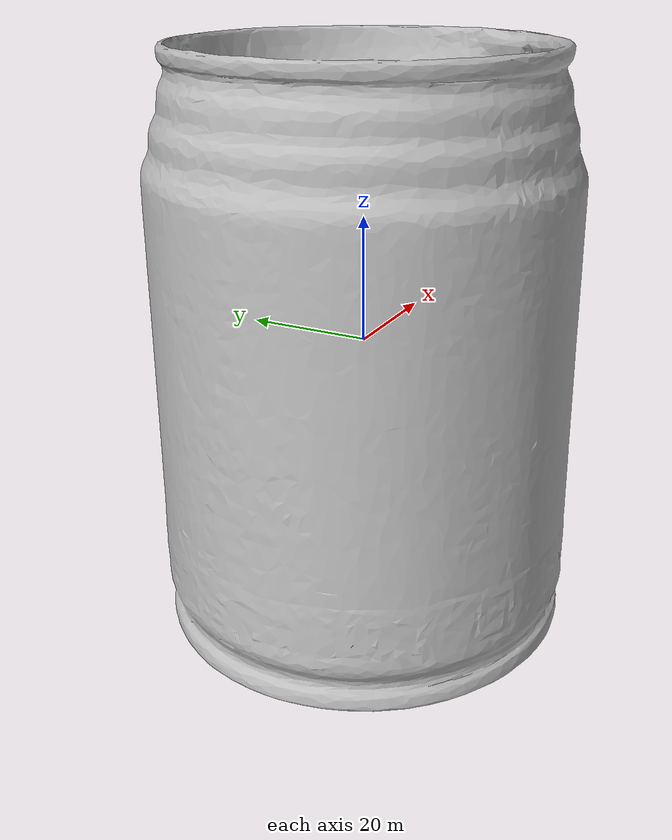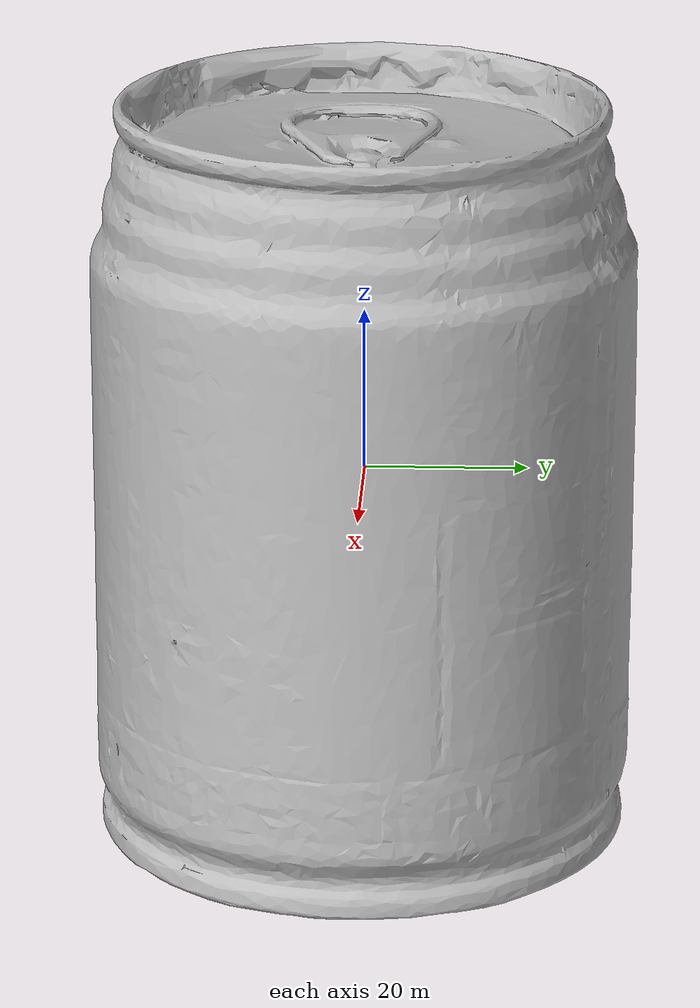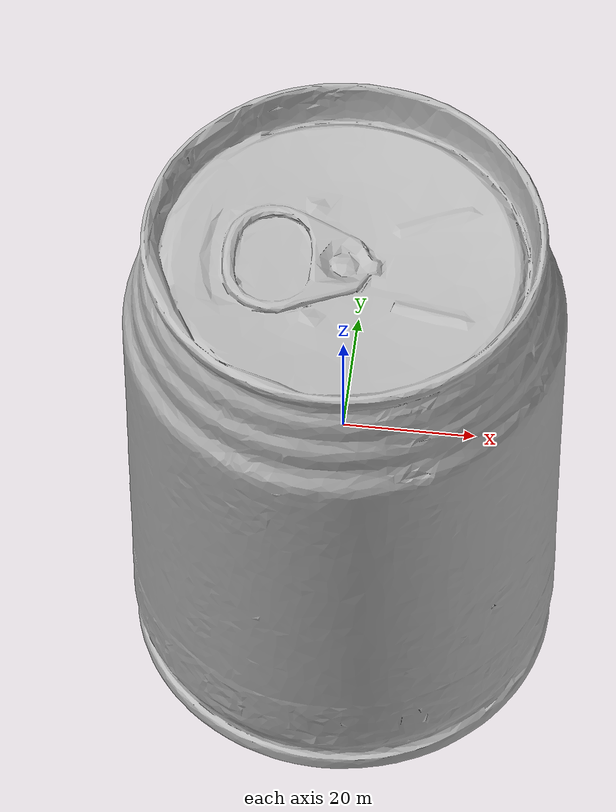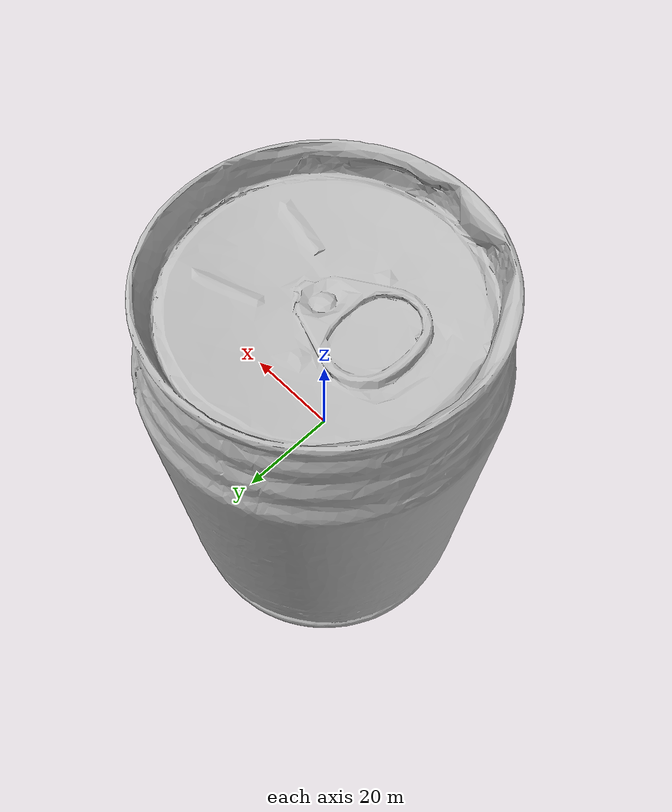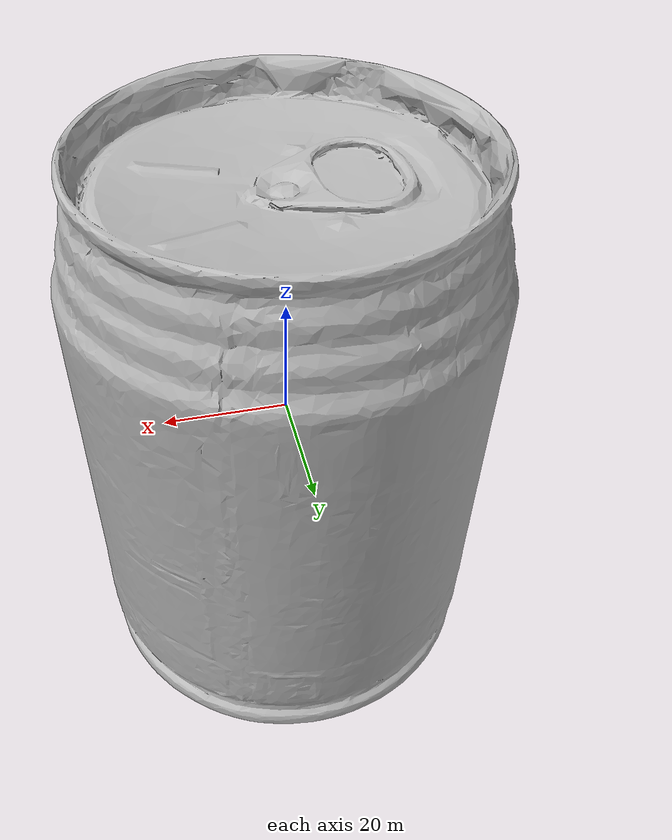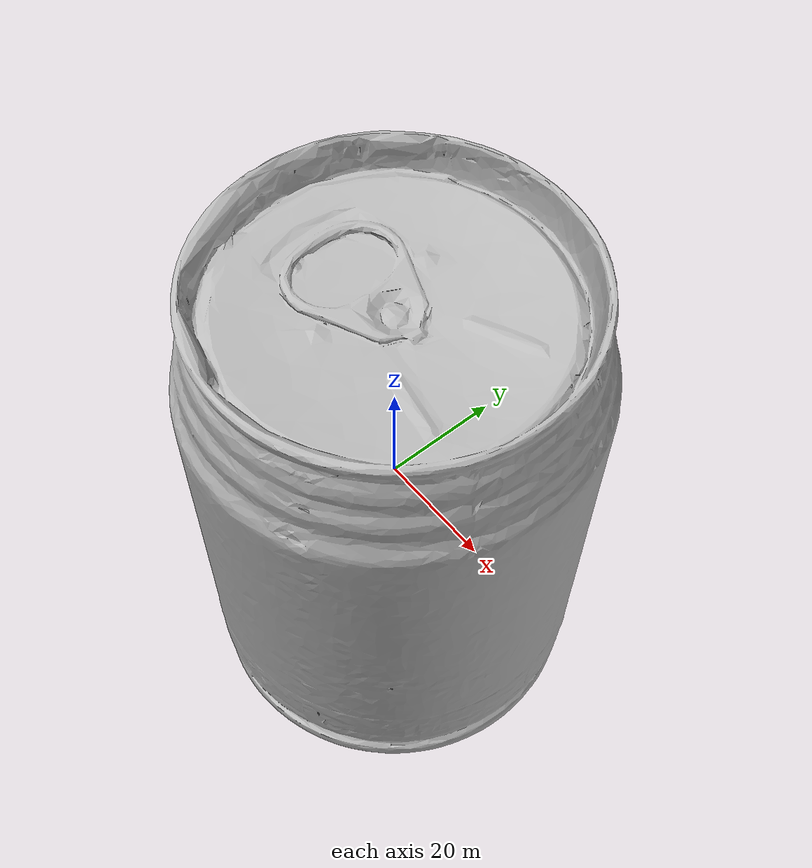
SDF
<sdf version="1.4">
 <world name="default">
  <light name="light1" type="point">
   <pose>0 0 1 0 0 0</pose>
   <diffuse>3 3 3 1</diffuse>
   <specular>3 3 3 1</specular>
  </light>
  <light name="light2" type="point">
   <pose>0 0.5 2 0 0 0</pose>
   <diffuse>1 1 1 1</diffuse>
   <specular>1 1 1 1</specular>
  </light>
  <light name="light3" type="point">
   <pose>0 0.5 2 0 0 0</pose>
   <diffuse>3 3 3 1</diffuse>
   <specular>3 3 3 1</specular>
  </light>
  <scene><ambient>0.7 0.7 0.7</ambient></scene>
  <model name="box2">
   <link name="link_box2">
    <collision name="default">
     <geometry>
      <mesh><uri>model://wooden_puzzle2/collision_meshes/collision.obj</uri><scale>1.0 1.0 1.0</scale></mesh>
     </geometry>
     <surface>
      <friction><ode><mu>0.5</mu><mu2>0.5</mu2></ode></friction>
      <contact><ode><max_vel>0</max_vel><min_depth>0.0001</min_depth><kp>1e8</kp></ode></contact>
     </surface>
    </collision>
    <visual name="default">
     <geometry>
      <mesh><uri>model://wooden_puzzle2/visual_meshes/visual.dae</uri><scale>1.0 1.0 1.0</scale></mesh>
     </geometry>
    </visual>
    <inertial>
     <mass>0.03464552015066147</mass>
     <pose>2.7402536943554878e-05 4.997663199901581e-05 6.587122334167361e-05 -0.1920274284601778 0.6112817660648215 -0.6338676817937987</pose>
     <inertia>
      <ixx>6.440233e-06</ixx>
      <iyy>6.6177017e-06</iyy>
      <izz>6.52356e-06</izz>
      <ixy>0</ixy>
      <ixz>0</ixz>
      <iyz>0</iyz>
     </inertia>
    </inertial>
   </link>
   <pose>-0.08317286521196365 -0.3522258996963501 0.01691773533821106 0.020848040573561922 0.0007215585827490312 -1.525712848497827</pose>
  </model>
  <model name="box3">
   <link name="link_box3">
    <collision name="default">
     <geometry>
      <mesh><uri>model://wooden_puzzle1/collision_meshes/collision.obj</uri><scale>1.0 1.0 1.0</scale></mesh>
     </geometry>
     <surface>
      <friction><ode><mu>0.5</mu><mu2>0.5</mu2></ode></friction>
      <contact><ode><max_vel>0</max_vel><min_depth>0.0001</min_depth><kp>1e8</kp></ode></contact>
     </surface>
    </collision>
    <visual name="default">
     <geometry>
      <mesh><uri>model://wooden_puzzle1/visual_meshes/visual.dae</uri><scale>1.0 1.0 1.0</scale></mesh>
     </geometry>
    </visual>
    <inertial>
     <mass>0.03424873203039169</mass>
     <pose>-0.0001735068071866408 7.97226166469045e-05 -9.191554272547364e-05 -0.07784599296854997 -0.2636133645981781 -0.5528677830585703</pose>
     <inertia>
      <ixx>6.4618e-06</ixx>
      <iyy>6.3374077e-06</iyy>
      <izz>6.413012e-06</izz>
      <ixy>0</ixy>
      <ixz>0</ixz>
      <iyz>0</iyz>
     </inertia>
    </inertial>
   </link>
   <pose>0.2765340209007263 0.1966189295053482 0.016802029684185982 0.01051086067724843 -0.009454295547462334 2.251608367259368</pose>
  </model>
  <model name="can1">
   <link name="link_can1">
    <collision name="default">
     <geometry>
      <mesh><uri>model://pepsi/collision_meshes/collision.obj</uri><scale>1.0 1.0 1.0</scale></mesh>
     </geometry>
     <surface>
      <friction><ode><mu>0.5</mu><mu2>0.5</mu2></ode></friction>
      <contact><ode><max_vel>0</max_vel><min_depth>0.0001</min_depth><kp>1e8</kp></ode></contact>
     </surface>
    </collision>
    <visual name="default">
     <geometry><mesh><uri>model://pepsi/visual_meshes/visual.dae</uri><scale>1.0 1.0 1.0</scale></mesh></geometry>
    </visual>
    <inertial>
     <mass>0.3250696361064911</mass>
     <pose>-7.5590331107378e-05 2.99312814604491e-05 -0.0003384356386959553 -0.0010678660158137958 -0.0021735266966629516 0.5674177426725915</pose>
     <inertia>
      <ixx>0.0006476009</ixx>
      <iyy>0.0006471292</iyy>
      <izz>0.00013783273</izz>
      <ixy>0</ixy>
      <ixz>0</ixz>
      <iyz>0</iyz>
     </inertia>
    </inertial>
   </link>
   <pose>0.038879700005054474 0.3528680205345154 0.07449635118246078 -1.8823818531162544e-05 1.7265136961461829e-06 -1.8673349968832131</pose>
  </model>
  <model name="can2">
   <link name="link_can2">
    <collision name="default">
     <geometry>
      <mesh><uri>model://redbull/collision_meshes/collision.obj</uri><scale>1.0 1.0 1.0</scale></mesh>
     </geometry>
     <surface>
      <friction><ode><mu>0.5</mu><mu2>0.5</mu2></ode></friction>
      <contact><ode><max_vel>0</max_vel><min_depth>0.0001</min_depth><kp>1e8</kp></ode></contact>
     </surface>
    </collision>
    <visual name="default">
     <geometry>
      <mesh><uri>model://redbull/visual_meshes/visual.dae</uri><scale>1.0 1.0 1.0</scale></mesh>
     </geometry>
    </visual>
    <inertial>
     <mass>0.28235653042793274</mass>
     <pose>-2.2127058400656097e-05 -0.00012659600179176778 -0.0006860987632535398 0.0011377565977294822 -0.010800863454111471 0.5858141898730843</pose>
     <inertia>
      <ixx>0.0002654759</ixx>
      <iyy>0.0002657</iyy>
      <izz>0.00015754026</izz>
      <ixy>0</ixy>
      <ixz>0</ixz>
      <iyz>0</iyz>
     </inertia>
    </inertial>
   </link>
   <pose>0.26701509952545166 -0.24201230704784393 0.04638563096523285 -0.01048955304251425 0.007260139551626158 -1.1043764757478984</pose>
  </model>
  <physics type="ode">
   <max_contacts>50</max_contacts>
   <ode>
    <solver><type>quick</type><iters>75</iters></solver>
    <constraints>
     <contact_max_correcting_vel>0</contact_max_correcting_vel>
     <contact_surface_layer>0</contact_surface_layer>
    </constraints>
   </ode>
  </physics>
 </world>
</sdf>
